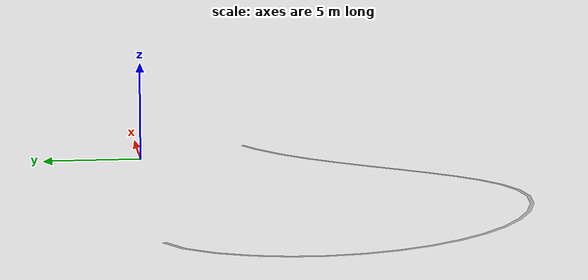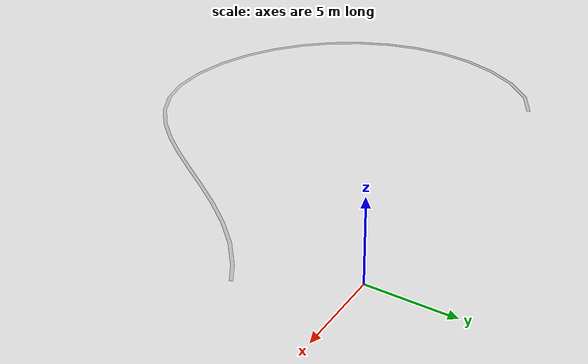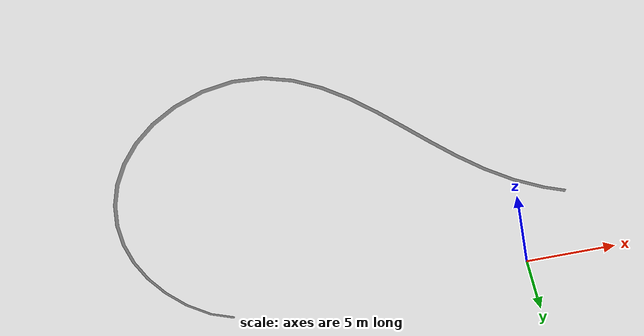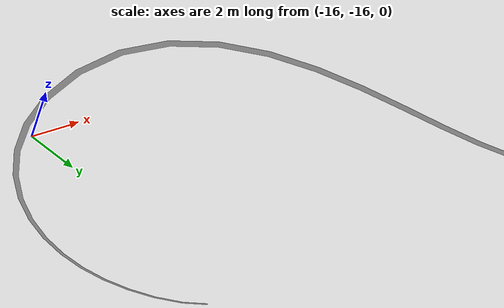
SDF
<?xml version="1.0"?>
<sdf version="1.5">
    <model name="road1_3">
        <static>true</static>
        <link name="link">
            <collision name="collision">
                <pose>0 0 0 0 0 0</pose>
                <geometry>
                    <mesh>
                        <uri>model://road1_3/meshes/road1_3.dae</uri>
                    </mesh>
                </geometry>
            </collision>
            <visual name="visual">
              <pose>0 0 0 0 0 0</pose>
              <geometry>
              <mesh>
                 <uri>model://road1_3/meshes/road1_3.dae</uri>
              </mesh>
              </geometry>
             </visual>
        </link>
    </model>
</sdf>
